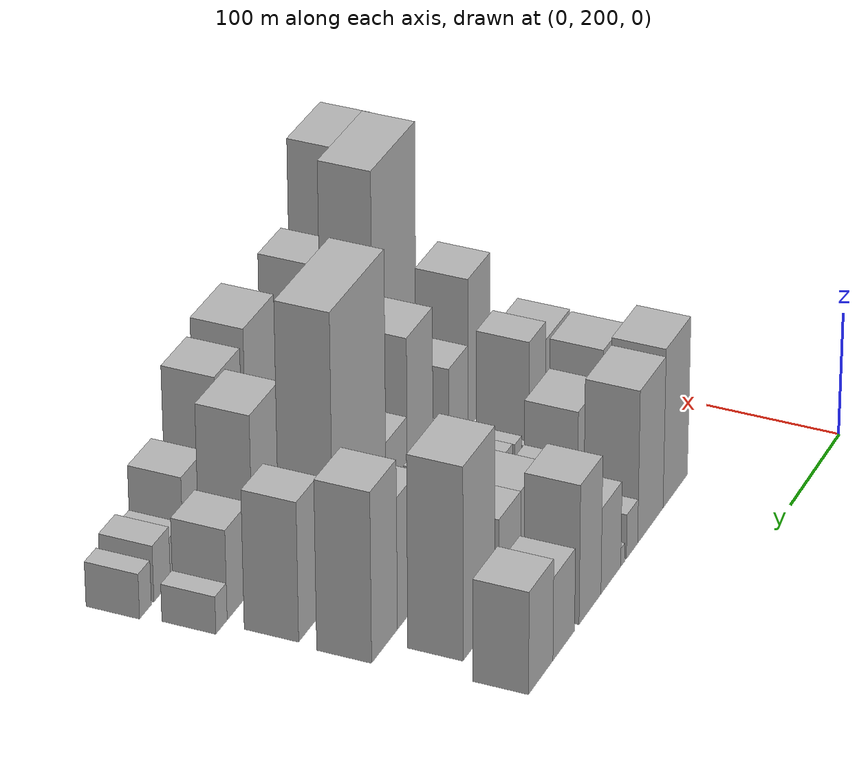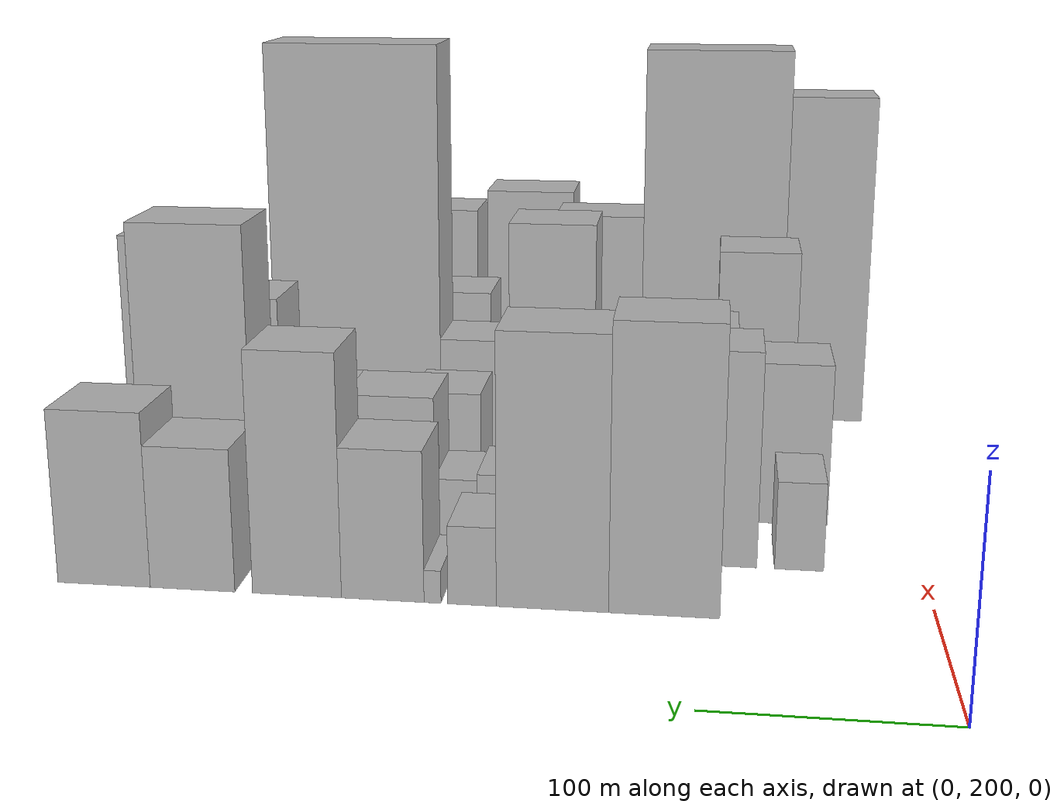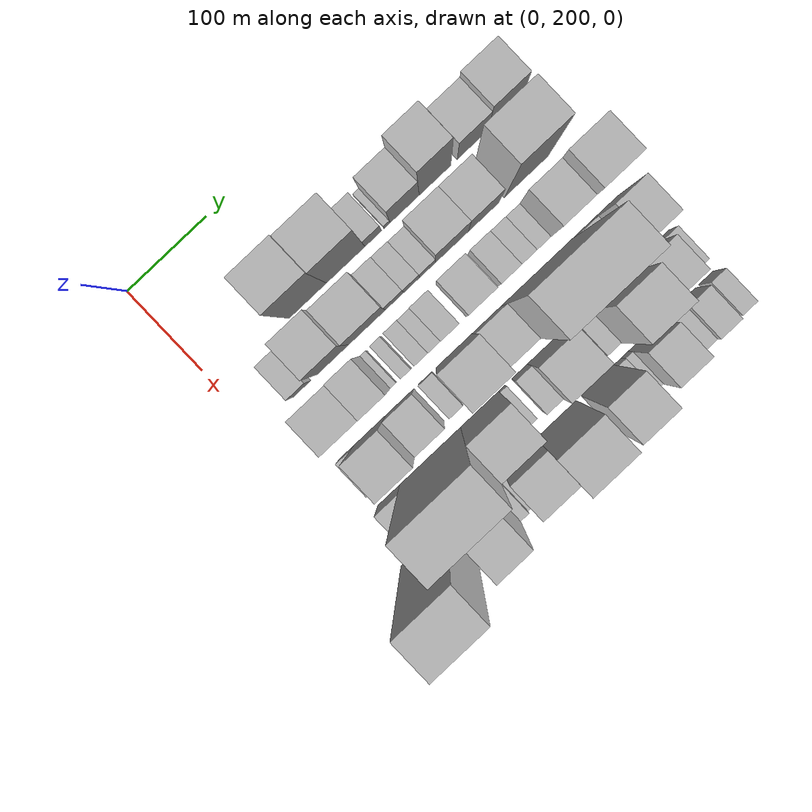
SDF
<sdf version="1.6">
 <world name="default">
  <model name="building_30">
   <static>1</static>
   <pose>100.0000 314.6319 0 0.000000 0.000000 0.000000</pose>
   <link name="link">
    <pose>0 0 64.50 0 0 0</pose>
    <collision name="collision"><geometry><box><size>40.0000 47.1267 129.0000</size></box></geometry></collision>
    <visual name="visual">
     <cast_shadows>0</cast_shadows>
     <geometry><box><size>40.0000 47.1267 129.0000</size></box></geometry>
     <material>
      <script>
       <uri>model://HANNAS_wall/materials/scripts</uri>
       <uri>model://HANNAS_wall/materials/textures</uri>
       <name>vrc/HANNAS_wall</name>
      </script>
     </material>
    </visual>
   </link>
  </model>
  <model name="building_31">
   <static>1</static>
   <pose>100.0000 362.3752 0 0.000000 0.000000 0.000000</pose>
   <link name="link">
    <pose>0 0 61.50 0 0 0</pose>
    <collision name="collision"><geometry><box><size>40.0000 48.3600 123.0000</size></box></geometry></collision>
    <visual name="visual">
     <cast_shadows>0</cast_shadows>
     <geometry><box><size>40.0000 48.3600 123.0000</size></box></geometry>
     <material>
      <script>
       <uri>model://HANNAS_wall/materials/scripts</uri>
       <uri>model://HANNAS_wall/materials/textures</uri>
       <name>vrc/HANNAS_wall</name>
      </script>
     </material>
    </visual>
   </link>
  </model>
  <model name="building_32">
   <static>1</static>
   <pose>100.0000 397.0829 0 0.000000 0.000000 0.000000</pose>
   <link name="link">
    <pose>0 0 18.00 0 0 0</pose>
    <collision name="collision"><geometry><box><size>40.0000 21.0553 36.0000</size></box></geometry></collision>
    <visual name="visual">
     <cast_shadows>0</cast_shadows>
     <geometry><box><size>40.0000 21.0553 36.0000</size></box></geometry>
     <material>
      <script>
       <uri>model://HANNAS_wall/materials/scripts</uri>
       <uri>model://HANNAS_wall/materials/textures</uri>
       <name>vrc/HANNAS_wall</name>
      </script>
     </material>
    </visual>
   </link>
  </model>
  <model name="building_33">
   <static>1</static>
   <pose>100.0000 414.3294 0 0.000000 0.000000 0.000000</pose>
   <link name="link">
    <pose>0 0 7.50 0 0 0</pose>
    <collision name="collision"><geometry><box><size>40.0000 7.4376 15.0000</size></box></geometry></collision>
    <visual name="visual">
     <cast_shadows>0</cast_shadows>
     <geometry><box><size>40.0000 7.4376 15.0000</size></box></geometry>
     <material>
      <script>
       <uri>model://HANNAS_wall/materials/scripts</uri>
       <uri>model://HANNAS_wall/materials/textures</uri>
       <name>vrc/HANNAS_wall</name>
      </script>
     </material>
    </visual>
   </link>
  </model>
  <model name="building_34">
   <static>1</static>
   <pose>100.0000 436.3212 0 0.000000 0.000000 0.000000</pose>
   <link name="link">
    <pose>0 0 34.50 0 0 0</pose>
    <collision name="collision"><geometry><box><size>40.0000 36.5459 69.0000</size></box></geometry></collision>
    <visual name="visual">
     <cast_shadows>0</cast_shadows>
     <geometry><box><size>40.0000 36.5459 69.0000</size></box></geometry>
     <material>
      <script>
       <uri>model://HANNAS_wall/materials/scripts</uri>
       <uri>model://HANNAS_wall/materials/textures</uri>
       <name>vrc/HANNAS_wall</name>
      </script>
     </material>
    </visual>
   </link>
  </model>
  <model name="building_35">
   <static>1</static>
   <pose>100.0000 474.5273 0 0.000000 0.000000 0.000000</pose>
   <link name="link">
    <pose>0 0 55.50 0 0 0</pose>
    <collision name="collision"><geometry><box><size>40.0000 39.8662 111.0000</size></box></geometry></collision>
    <visual name="visual">
     <cast_shadows>0</cast_shadows>
     <geometry><box><size>40.0000 39.8662 111.0000</size></box></geometry>
     <material>
      <script>
       <uri>model://HANNAS_wall/materials/scripts</uri>
       <uri>model://HANNAS_wall/materials/textures</uri>
       <name>vrc/HANNAS_wall</name>
      </script>
     </material>
    </visual>
   </link>
  </model>
  <model name="building_36">
   <static>1</static>
   <pose>100.0000 521.7533 0 0.000000 0.000000 0.000000</pose>
   <link name="link">
    <pose>0 0 33.00 0 0 0</pose>
    <collision name="collision"><geometry><box><size>40.0000 38.5858 66.0000</size></box></geometry></collision>
    <visual name="visual">
     <cast_shadows>0</cast_shadows>
     <geometry><box><size>40.0000 38.5858 66.0000</size></box></geometry>
     <material>
      <script>
       <uri>model://HANNAS_wall/materials/scripts</uri>
       <uri>model://HANNAS_wall/materials/textures</uri>
       <name>vrc/HANNAS_wall</name>
      </script>
     </material>
    </visual>
   </link>
  </model>
  <model name="building_37">
   <static>1</static>
   <pose>100.0000 562.4092 0 0.000000 0.000000 0.000000</pose>
   <link name="link">
    <pose>0 0 40.50 0 0 0</pose>
    <collision name="collision"><geometry><box><size>40.0000 42.7259 81.0000</size></box></geometry></collision>
    <visual name="visual">
     <cast_shadows>0</cast_shadows>
     <geometry><box><size>40.0000 42.7259 81.0000</size></box></geometry>
     <material>
      <script>
       <uri>model://HANNAS_wall/materials/scripts</uri>
       <uri>model://HANNAS_wall/materials/textures</uri>
       <name>vrc/HANNAS_wall</name>
      </script>
     </material>
    </visual>
   </link>
  </model>
  <model name="building_83">
   <static>1</static>
   <pose>155.0000 255.4973 0 0.000000 0.000000 0.000000</pose>
   <link name="link">
    <pose>0 0 21.00 0 0 0</pose>
    <collision name="collision"><geometry><box><size>40.0000 21.9755 42.0000</size></box></geometry></collision>
    <visual name="visual">
     <cast_shadows>0</cast_shadows>
     <geometry><box><size>40.0000 21.9755 42.0000</size></box></geometry>
     <material>
      <script>
       <uri>model://HANNAS_wall/materials/scripts</uri>
       <uri>model://HANNAS_wall/materials/textures</uri>
       <name>vrc/HANNAS_wall</name>
      </script>
     </material>
    </visual>
   </link>
  </model>
  <model name="building_84">
   <static>1</static>
   <pose>155.0000 294.4919 0 0.000000 0.000000 0.000000</pose>
   <link name="link">
    <pose>0 0 51.00 0 0 0</pose>
    <collision name="collision"><geometry><box><size>40.0000 40.0136 102.0000</size></box></geometry></collision>
    <visual name="visual">
     <cast_shadows>0</cast_shadows>
     <geometry><box><size>40.0000 40.0136 102.0000</size></box></geometry>
     <material>
      <script>
       <uri>model://HANNAS_wall/materials/scripts</uri>
       <uri>model://HANNAS_wall/materials/textures</uri>
       <name>vrc/HANNAS_wall</name>
      </script>
     </material>
    </visual>
   </link>
  </model>
  <model name="building_85">
   <static>1</static>
   <pose>155.0000 337.5068 0 0.000000 0.000000 0.000000</pose>
   <link name="link">
    <pose>0 0 39.00 0 0 0</pose>
    <collision name="collision"><geometry><box><size>40.0000 46.0161 78.0000</size></box></geometry></collision>
    <visual name="visual">
     <cast_shadows>0</cast_shadows>
     <geometry><box><size>40.0000 46.0161 78.0000</size></box></geometry>
     <material>
      <script>
       <uri>model://HANNAS_wall/materials/scripts</uri>
       <uri>model://HANNAS_wall/materials/textures</uri>
       <name>vrc/HANNAS_wall</name>
      </script>
     </material>
    </visual>
   </link>
  </model>
  <model name="building_86">
   <static>1</static>
   <pose>155.0000 371.8762 0 0.000000 0.000000 0.000000</pose>
   <link name="link">
    <pose>0 0 21.00 0 0 0</pose>
    <collision name="collision"><geometry><box><size>40.0000 22.7227 42.0000</size></box></geometry></collision>
    <visual name="visual">
     <cast_shadows>0</cast_shadows>
     <geometry><box><size>40.0000 22.7227 42.0000</size></box></geometry>
     <material>
      <script>
       <uri>model://HANNAS_wall/materials/scripts</uri>
       <uri>model://HANNAS_wall/materials/textures</uri>
       <name>vrc/HANNAS_wall</name>
      </script>
     </material>
    </visual>
   </link>
  </model>
  <model name="building_87">
   <static>1</static>
   <pose>155.0000 393.2218 0 0.000000 0.000000 0.000000</pose>
   <link name="link">
    <pose>0 0 19.50 0 0 0</pose>
    <collision name="collision"><geometry><box><size>40.0000 19.9685 39.0000</size></box></geometry></collision>
    <visual name="visual">
     <cast_shadows>0</cast_shadows>
     <geometry><box><size>40.0000 19.9685 39.0000</size></box></geometry>
     <material>
      <script>
       <uri>model://HANNAS_wall/materials/scripts</uri>
       <uri>model://HANNAS_wall/materials/textures</uri>
       <name>vrc/HANNAS_wall</name>
      </script>
     </material>
    </visual>
   </link>
  </model>
  <model name="building_88">
   <static>1</static>
   <pose>155.0000 413.1202 0 0.000000 0.000000 0.000000</pose>
   <link name="link">
    <pose>0 0 18.00 0 0 0</pose>
    <collision name="collision"><geometry><box><size>40.0000 19.8284 36.0000</size></box></geometry></collision>
    <visual name="visual">
     <cast_shadows>0</cast_shadows>
     <geometry><box><size>40.0000 19.8284 36.0000</size></box></geometry>
     <material>
      <script>
       <uri>model://HANNAS_wall/materials/scripts</uri>
       <uri>model://HANNAS_wall/materials/textures</uri>
       <name>vrc/HANNAS_wall</name>
      </script>
     </material>
    </visual>
   </link>
  </model>
  <model name="building_89">
   <static>1</static>
   <pose>155.0000 443.6452 0 0.000000 0.000000 0.000000</pose>
   <link name="link">
    <pose>0 0 37.50 0 0 0</pose>
    <collision name="collision"><geometry><box><size>40.0000 41.2216 75.0000</size></box></geometry></collision>
    <visual name="visual">
     <cast_shadows>0</cast_shadows>
     <geometry><box><size>40.0000 41.2216 75.0000</size></box></geometry>
     <material>
      <script>
       <uri>model://HANNAS_wall/materials/scripts</uri>
       <uri>model://HANNAS_wall/materials/textures</uri>
       <name>vrc/HANNAS_wall</name>
      </script>
     </material>
    </visual>
   </link>
  </model>
  <model name="building_90">
   <static>1</static>
   <pose>155.0000 483.4719 0 0.000000 0.000000 0.000000</pose>
   <link name="link">
    <pose>0 0 37.50 0 0 0</pose>
    <collision name="collision"><geometry><box><size>40.0000 38.4318 75.0000</size></box></geometry></collision>
    <visual name="visual">
     <cast_shadows>0</cast_shadows>
     <geometry><box><size>40.0000 38.4318 75.0000</size></box></geometry>
     <material>
      <script>
       <uri>model://HANNAS_wall/materials/scripts</uri>
       <uri>model://HANNAS_wall/materials/textures</uri>
       <name>vrc/HANNAS_wall</name>
      </script>
     </material>
    </visual>
   </link>
  </model>
  <model name="building_91">
   <static>1</static>
   <pose>155.0000 537.0962 0 0.000000 0.000000 0.000000</pose>
   <link name="link">
    <pose>0 0 76.50 0 0 0</pose>
    <collision name="collision"><geometry><box><size>40.0000 54.8168 153.0000</size></box></geometry></collision>
    <visual name="visual">
     <cast_shadows>0</cast_shadows>
     <geometry><box><size>40.0000 54.8168 153.0000</size></box></geometry>
     <material>
      <script>
       <uri>model://HANNAS_wall/materials/scripts</uri>
       <uri>model://HANNAS_wall/materials/textures</uri>
       <name>vrc/HANNAS_wall</name>
      </script>
     </material>
    </visual>
   </link>
  </model>
  <model name="building_136">
   <static>1</static>
   <pose>210.0000 262.2452 0 0.000000 0.000000 0.000000</pose>
   <link name="link">
    <pose>0 0 40.50 0 0 0</pose>
    <collision name="collision"><geometry><box><size>40.0000 45.6060 81.0000</size></box></geometry></collision>
    <visual name="visual">
     <cast_shadows>0</cast_shadows>
     <geometry><box><size>40.0000 45.6060 81.0000</size></box></geometry>
     <material>
      <script>
       <uri>model://HANNAS_wall/materials/scripts</uri>
       <uri>model://HANNAS_wall/materials/textures</uri>
       <name>vrc/HANNAS_wall</name>
      </script>
     </material>
    </visual>
   </link>
  </model>
  <model name="building_137">
   <static>1</static>
   <pose>210.0000 300.2161 0 0.000000 0.000000 0.000000</pose>
   <link name="link">
    <pose>0 0 48.00 0 0 0</pose>
    <collision name="collision"><geometry><box><size>40.0000 30.3357 96.0000</size></box></geometry></collision>
    <visual name="visual">
     <cast_shadows>0</cast_shadows>
     <geometry><box><size>40.0000 30.3357 96.0000</size></box></geometry>
     <material>
      <script>
       <uri>model://HANNAS_wall/materials/scripts</uri>
       <uri>model://HANNAS_wall/materials/textures</uri>
       <name>vrc/HANNAS_wall</name>
      </script>
     </material>
    </visual>
   </link>
  </model>
  <model name="building_138">
   <static>1</static>
   <pose>210.0000 318.8858 0 0.000000 0.000000 0.000000</pose>
   <link name="link">
    <pose>0 0 7.50 0 0 0</pose>
    <collision name="collision"><geometry><box><size>40.0000 7.0038 15.0000</size></box></geometry></collision>
    <visual name="visual">
     <cast_shadows>0</cast_shadows>
     <geometry><box><size>40.0000 7.0038 15.0000</size></box></geometry>
     <material>
      <script>
       <uri>model://HANNAS_wall/materials/scripts</uri>
       <uri>model://HANNAS_wall/materials/textures</uri>
       <name>vrc/HANNAS_wall</name>
      </script>
     </material>
    </visual>
   </link>
  </model>
  <model name="building_139">
   <static>1</static>
   <pose>210.0000 334.7355 0 0.000000 0.000000 0.000000</pose>
   <link name="link">
    <pose>0 0 13.50 0 0 0</pose>
    <collision name="collision"><geometry><box><size>40.0000 12.6956 27.0000</size></box></geometry></collision>
    <visual name="visual">
     <cast_shadows>0</cast_shadows>
     <geometry><box><size>40.0000 12.6956 27.0000</size></box></geometry>
     <material>
      <script>
       <uri>model://HANNAS_wall/materials/scripts</uri>
       <uri>model://HANNAS_wall/materials/textures</uri>
       <name>vrc/HANNAS_wall</name>
      </script>
     </material>
    </visual>
   </link>
  </model>
  <model name="building_140">
   <static>1</static>
   <pose>210.0000 353.4913 0 0.000000 0.000000 0.000000</pose>
   <link name="link">
    <pose>0 0 15.00 0 0 0</pose>
    <collision name="collision"><geometry><box><size>40.0000 16.8160 30.0000</size></box></geometry></collision>
    <visual name="visual">
     <cast_shadows>0</cast_shadows>
     <geometry><box><size>40.0000 16.8160 30.0000</size></box></geometry>
     <material>
      <script>
       <uri>model://HANNAS_wall/materials/scripts</uri>
       <uri>model://HANNAS_wall/materials/textures</uri>
       <name>vrc/HANNAS_wall</name>
      </script>
     </material>
    </visual>
   </link>
  </model>
  <model name="building_141">
   <static>1</static>
   <pose>210.0000 369.5253 0 0.000000 0.000000 0.000000</pose>
   <link name="link">
    <pose>0 0 15.00 0 0 0</pose>
    <collision name="collision"><geometry><box><size>40.0000 15.2520 30.0000</size></box></geometry></collision>
    <visual name="visual">
     <cast_shadows>0</cast_shadows>
     <geometry><box><size>40.0000 15.2520 30.0000</size></box></geometry>
     <material>
      <script>
       <uri>model://HANNAS_wall/materials/scripts</uri>
       <uri>model://HANNAS_wall/materials/textures</uri>
       <name>vrc/HANNAS_wall</name>
      </script>
     </material>
    </visual>
   </link>
  </model>
  <model name="building_142">
   <static>1</static>
   <pose>210.0000 388.4148 0 0.000000 0.000000 0.000000</pose>
   <link name="link">
    <pose>0 0 21.00 0 0 0</pose>
    <collision name="collision"><geometry><box><size>40.0000 22.5270 42.0000</size></box></geometry></collision>
    <visual name="visual">
     <cast_shadows>0</cast_shadows>
     <geometry><box><size>40.0000 22.5270 42.0000</size></box></geometry>
     <material>
      <script>
       <uri>model://HANNAS_wall/materials/scripts</uri>
       <uri>model://HANNAS_wall/materials/textures</uri>
       <name>vrc/HANNAS_wall</name>
      </script>
     </material>
    </visual>
   </link>
  </model>
  <model name="building_143">
   <static>1</static>
   <pose>210.0000 426.7363 0 0.000000 0.000000 0.000000</pose>
   <link name="link">
    <pose>0 0 30.00 0 0 0</pose>
    <collision name="collision"><geometry><box><size>40.0000 34.1160 60.0000</size></box></geometry></collision>
    <visual name="visual">
     <cast_shadows>0</cast_shadows>
     <geometry><box><size>40.0000 34.1160 60.0000</size></box></geometry>
     <material>
      <script>
       <uri>model://HANNAS_wall/materials/scripts</uri>
       <uri>model://HANNAS_wall/materials/textures</uri>
       <name>vrc/HANNAS_wall</name>
      </script>
     </material>
    </visual>
   </link>
  </model>
  <model name="building_144">
   <static>1</static>
   <pose>210.0000 462.1225 0 0.000000 0.000000 0.000000</pose>
   <link name="link">
    <pose>0 0 21.00 0 0 0</pose>
    <collision name="collision"><geometry><box><size>40.0000 24.6564 42.0000</size></box></geometry></collision>
    <visual name="visual">
     <cast_shadows>0</cast_shadows>
     <geometry><box><size>40.0000 24.6564 42.0000</size></box></geometry>
     <material>
      <script>
       <uri>model://HANNAS_wall/materials/scripts</uri>
       <uri>model://HANNAS_wall/materials/textures</uri>
       <name>vrc/HANNAS_wall</name>
      </script>
     </material>
    </visual>
   </link>
  </model>
  <model name="building_145">
   <static>1</static>
   <pose>210.0000 483.9629 0 0.000000 0.000000 0.000000</pose>
   <link name="link">
    <pose>0 0 18.00 0 0 0</pose>
    <collision name="collision"><geometry><box><size>40.0000 19.0243 36.0000</size></box></geometry></collision>
    <visual name="visual">
     <cast_shadows>0</cast_shadows>
     <geometry><box><size>40.0000 19.0243 36.0000</size></box></geometry>
     <material>
      <script>
       <uri>model://HANNAS_wall/materials/scripts</uri>
       <uri>model://HANNAS_wall/materials/textures</uri>
       <name>vrc/HANNAS_wall</name>
      </script>
     </material>
    </visual>
   </link>
  </model>
  <model name="building_146">
   <static>1</static>
   <pose>210.0000 502.0914 0 0.000000 0.000000 0.000000</pose>
   <link name="link">
    <pose>0 0 16.50 0 0 0</pose>
    <collision name="collision"><geometry><box><size>40.0000 17.2326 33.0000</size></box></geometry></collision>
    <visual name="visual">
     <cast_shadows>0</cast_shadows>
     <geometry><box><size>40.0000 17.2326 33.0000</size></box></geometry>
     <material>
      <script>
       <uri>model://HANNAS_wall/materials/scripts</uri>
       <uri>model://HANNAS_wall/materials/textures</uri>
       <name>vrc/HANNAS_wall</name>
      </script>
     </material>
    </visual>
   </link>
  </model>
  <model name="building_147">
   <static>1</static>
   <pose>210.0000 528.9650 0 0.000000 0.000000 0.000000</pose>
   <link name="link">
    <pose>0 0 52.50 0 0 0</pose>
    <collision name="collision"><geometry><box><size>40.0000 36.5147 105.0000</size></box></geometry></collision>
    <visual name="visual">
     <cast_shadows>0</cast_shadows>
     <geometry><box><size>40.0000 36.5147 105.0000</size></box></geometry>
     <material>
      <script>
       <uri>model://HANNAS_wall/materials/scripts</uri>
       <uri>model://HANNAS_wall/materials/textures</uri>
       <name>vrc/HANNAS_wall</name>
      </script>
     </material>
    </visual>
   </link>
  </model>
  <model name="building_148">
   <static>1</static>
   <pose>210.0000 568.8147 0 0.000000 0.000000 0.000000</pose>
   <link name="link">
    <pose>0 0 67.50 0 0 0</pose>
    <collision name="collision"><geometry><box><size>40.0000 43.1846 135.0000</size></box></geometry></collision>
    <visual name="visual">
     <cast_shadows>0</cast_shadows>
     <geometry><box><size>40.0000 43.1846 135.0000</size></box></geometry>
     <material>
      <script>
       <uri>model://HANNAS_wall/materials/scripts</uri>
       <uri>model://HANNAS_wall/materials/textures</uri>
       <name>vrc/HANNAS_wall</name>
      </script>
     </material>
    </visual>
   </link>
  </model>
  <model name="building_191">
   <static>1</static>
   <pose>265.0000 245.1138 0 0.000000 0.000000 0.000000</pose>
   <link name="link">
    <pose>0 0 16.50 0 0 0</pose>
    <collision name="collision"><geometry><box><size>40.0000 18.4660 33.0000</size></box></geometry></collision>
    <visual name="visual">
     <cast_shadows>0</cast_shadows>
     <geometry><box><size>40.0000 18.4660 33.0000</size></box></geometry>
     <material>
      <script>
       <uri>model://HANNAS_wall/materials/scripts</uri>
       <uri>model://HANNAS_wall/materials/textures</uri>
       <name>vrc/HANNAS_wall</name>
      </script>
     </material>
    </visual>
   </link>
  </model>
  <model name="building_192">
   <static>1</static>
   <pose>265.0000 274.6397 0 0.000000 0.000000 0.000000</pose>
   <link name="link">
    <pose>0 0 61.50 0 0 0</pose>
    <collision name="collision"><geometry><box><size>40.0000 40.5857 123.0000</size></box></geometry></collision>
    <visual name="visual">
     <cast_shadows>0</cast_shadows>
     <geometry><box><size>40.0000 40.5857 123.0000</size></box></geometry>
     <material>
      <script>
       <uri>model://HANNAS_wall/materials/scripts</uri>
       <uri>model://HANNAS_wall/materials/textures</uri>
       <name>vrc/HANNAS_wall</name>
      </script>
     </material>
    </visual>
   </link>
  </model>
  <model name="building_193">
   <static>1</static>
   <pose>265.0000 312.2725 0 0.000000 0.000000 0.000000</pose>
   <link name="link">
    <pose>0 0 34.50 0 0 0</pose>
    <collision name="collision"><geometry><box><size>40.0000 34.6798 69.0000</size></box></geometry></collision>
    <visual name="visual">
     <cast_shadows>0</cast_shadows>
     <geometry><box><size>40.0000 34.6798 69.0000</size></box></geometry>
     <material>
      <script>
       <uri>model://HANNAS_wall/materials/scripts</uri>
       <uri>model://HANNAS_wall/materials/textures</uri>
       <name>vrc/HANNAS_wall</name>
      </script>
     </material>
    </visual>
   </link>
  </model>
  <model name="building_194">
   <static>1</static>
   <pose>265.0000 344.1793 0 0.000000 0.000000 0.000000</pose>
   <link name="link">
    <pose>0 0 15.00 0 0 0</pose>
    <collision name="collision"><geometry><box><size>40.0000 17.1338 30.0000</size></box></geometry></collision>
    <visual name="visual">
     <cast_shadows>0</cast_shadows>
     <geometry><box><size>40.0000 17.1338 30.0000</size></box></geometry>
     <material>
      <script>
       <uri>model://HANNAS_wall/materials/scripts</uri>
       <uri>model://HANNAS_wall/materials/textures</uri>
       <name>vrc/HANNAS_wall</name>
      </script>
     </material>
    </visual>
   </link>
  </model>
  <model name="building_195">
   <static>1</static>
   <pose>265.0000 380.2860 0 0.000000 0.000000 0.000000</pose>
   <link name="link">
    <pose>0 0 67.50 0 0 0</pose>
    <collision name="collision"><geometry><box><size>40.0000 45.0798 135.0000</size></box></geometry></collision>
    <visual name="visual">
     <cast_shadows>0</cast_shadows>
     <geometry><box><size>40.0000 45.0798 135.0000</size></box></geometry>
     <material>
      <script>
       <uri>model://HANNAS_wall/materials/scripts</uri>
       <uri>model://HANNAS_wall/materials/textures</uri>
       <name>vrc/HANNAS_wall</name>
      </script>
     </material>
    </visual>
   </link>
  </model>
  <model name="building_196">
   <static>1</static>
   <pose>265.0000 421.1002 0 0.000000 0.000000 0.000000</pose>
   <link name="link">
    <pose>0 0 36.00 0 0 0</pose>
    <collision name="collision"><geometry><box><size>40.0000 36.5485 72.0000</size></box></geometry></collision>
    <visual name="visual">
     <cast_shadows>0</cast_shadows>
     <geometry><box><size>40.0000 36.5485 72.0000</size></box></geometry>
     <material>
      <script>
       <uri>model://HANNAS_wall/materials/scripts</uri>
       <uri>model://HANNAS_wall/materials/textures</uri>
       <name>vrc/HANNAS_wall</name>
      </script>
     </material>
    </visual>
   </link>
  </model>
  <model name="building_197">
   <static>1</static>
   <pose>265.0000 484.1575 0 0.000000 0.000000 0.000000</pose>
   <link name="link">
    <pose>0 0 112.50 0 0 0</pose>
    <collision name="collision"><geometry><box><size>40.0000 89.5661 225.0000</size></box></geometry></collision>
    <visual name="visual">
     <cast_shadows>0</cast_shadows>
     <geometry><box><size>40.0000 89.5661 225.0000</size></box></geometry>
     <material>
      <script>
       <uri>model://HANNAS_wall/materials/scripts</uri>
       <uri>model://HANNAS_wall/materials/textures</uri>
       <name>vrc/HANNAS_wall</name>
      </script>
     </material>
    </visual>
   </link>
  </model>
  <model name="building_198">
   <static>1</static>
   <pose>265.0000 540.0744 0 0.000000 0.000000 0.000000</pose>
   <link name="link">
    <pose>0 0 21.00 0 0 0</pose>
    <collision name="collision"><geometry><box><size>40.0000 22.2676 42.0000</size></box></geometry></collision>
    <visual name="visual">
     <cast_shadows>0</cast_shadows>
     <geometry><box><size>40.0000 22.2676 42.0000</size></box></geometry>
     <material>
      <script>
       <uri>model://HANNAS_wall/materials/scripts</uri>
       <uri>model://HANNAS_wall/materials/textures</uri>
       <name>vrc/HANNAS_wall</name>
      </script>
     </material>
    </visual>
   </link>
  </model>
  <model name="building_199">
   <static>1</static>
   <pose>265.0000 568.7984 0 0.000000 0.000000 0.000000</pose>
   <link name="link">
    <pose>0 0 55.50 0 0 0</pose>
    <collision name="collision"><geometry><box><size>40.0000 35.1804 111.0000</size></box></geometry></collision>
    <visual name="visual">
     <cast_shadows>0</cast_shadows>
     <geometry><box><size>40.0000 35.1804 111.0000</size></box></geometry>
     <material>
      <script>
       <uri>model://HANNAS_wall/materials/scripts</uri>
       <uri>model://HANNAS_wall/materials/textures</uri>
       <name>vrc/HANNAS_wall</name>
      </script>
     </material>
    </visual>
   </link>
  </model>
  <model name="building_245">
   <static>1</static>
   <pose>320.0000 245.7446 0 0.000000 0.000000 0.000000</pose>
   <link name="link">
    <pose>0 0 24.00 0 0 0</pose>
    <collision name="collision"><geometry><box><size>40.0000 27.4651 48.0000</size></box></geometry></collision>
    <visual name="visual">
     <cast_shadows>0</cast_shadows>
     <geometry><box><size>40.0000 27.4651 48.0000</size></box></geometry>
     <material>
      <script>
       <uri>model://HANNAS_wall/materials/scripts</uri>
       <uri>model://HANNAS_wall/materials/textures</uri>
       <name>vrc/HANNAS_wall</name>
      </script>
     </material>
    </visual>
   </link>
  </model>
  <model name="building_246">
   <static>1</static>
   <pose>320.0000 297.9126 0 0.000000 0.000000 0.000000</pose>
   <link name="link">
    <pose>0 0 109.50 0 0 0</pose>
    <collision name="collision"><geometry><box><size>40.0000 76.8711 219.0000</size></box></geometry></collision>
    <visual name="visual">
     <cast_shadows>0</cast_shadows>
     <geometry><box><size>40.0000 76.8711 219.0000</size></box></geometry>
     <material>
      <script>
       <uri>model://HANNAS_wall/materials/scripts</uri>
       <uri>model://HANNAS_wall/materials/textures</uri>
       <name>vrc/HANNAS_wall</name>
      </script>
     </material>
    </visual>
   </link>
  </model>
  <model name="building_247">
   <static>1</static>
   <pose>320.0000 360.2757 0 0.000000 0.000000 0.000000</pose>
   <link name="link">
    <pose>0 0 64.50 0 0 0</pose>
    <collision name="collision"><geometry><box><size>40.0000 47.8551 129.0000</size></box></geometry></collision>
    <visual name="visual">
     <cast_shadows>0</cast_shadows>
     <geometry><box><size>40.0000 47.8551 129.0000</size></box></geometry>
     <material>
      <script>
       <uri>model://HANNAS_wall/materials/scripts</uri>
       <uri>model://HANNAS_wall/materials/textures</uri>
       <name>vrc/HANNAS_wall</name>
      </script>
     </material>
    </visual>
   </link>
  </model>
  <model name="building_248">
   <static>1</static>
   <pose>320.0000 388.4399 0 0.000000 0.000000 0.000000</pose>
   <link name="link">
    <pose>0 0 9.00 0 0 0</pose>
    <collision name="collision"><geometry><box><size>40.0000 8.4733 18.0000</size></box></geometry></collision>
    <visual name="visual">
     <cast_shadows>0</cast_shadows>
     <geometry><box><size>40.0000 8.4733 18.0000</size></box></geometry>
     <material>
      <script>
       <uri>model://HANNAS_wall/materials/scripts</uri>
       <uri>model://HANNAS_wall/materials/textures</uri>
       <name>vrc/HANNAS_wall</name>
      </script>
     </material>
    </visual>
   </link>
  </model>
  <model name="building_249">
   <static>1</static>
   <pose>320.0000 410.5685 0 0.000000 0.000000 0.000000</pose>
   <link name="link">
    <pose>0 0 19.50 0 0 0</pose>
    <collision name="collision"><geometry><box><size>40.0000 19.7838 39.0000</size></box></geometry></collision>
    <visual name="visual">
     <cast_shadows>0</cast_shadows>
     <geometry><box><size>40.0000 19.7838 39.0000</size></box></geometry>
     <material>
      <script>
       <uri>model://HANNAS_wall/materials/scripts</uri>
       <uri>model://HANNAS_wall/materials/textures</uri>
       <name>vrc/HANNAS_wall</name>
      </script>
     </material>
    </visual>
   </link>
  </model>
  <model name="building_250">
   <static>1</static>
   <pose>320.0000 444.0755 0 0.000000 0.000000 0.000000</pose>
   <link name="link">
    <pose>0 0 42.00 0 0 0</pose>
    <collision name="collision"><geometry><box><size>40.0000 47.2302 84.0000</size></box></geometry></collision>
    <visual name="visual">
     <cast_shadows>0</cast_shadows>
     <geometry><box><size>40.0000 47.2302 84.0000</size></box></geometry>
     <material>
      <script>
       <uri>model://HANNAS_wall/materials/scripts</uri>
       <uri>model://HANNAS_wall/materials/textures</uri>
       <name>vrc/HANNAS_wall</name>
      </script>
     </material>
    </visual>
   </link>
  </model>
  <model name="building_251">
   <static>1</static>
   <pose>320.0000 471.2905 0 0.000000 0.000000 0.000000</pose>
   <link name="link">
    <pose>0 0 7.50 0 0 0</pose>
    <collision name="collision"><geometry><box><size>40.0000 7.1999 15.0000</size></box></geometry></collision>
    <visual name="visual">
     <cast_shadows>0</cast_shadows>
     <geometry><box><size>40.0000 7.1999 15.0000</size></box></geometry>
     <material>
      <script>
       <uri>model://HANNAS_wall/materials/scripts</uri>
       <uri>model://HANNAS_wall/materials/textures</uri>
       <name>vrc/HANNAS_wall</name>
      </script>
     </material>
    </visual>
   </link>
  </model>
  <model name="building_252">
   <static>1</static>
   <pose>320.0000 483.2172 0 0.000000 0.000000 0.000000</pose>
   <link name="link">
    <pose>0 0 16.50 0 0 0</pose>
    <collision name="collision"><geometry><box><size>40.0000 16.6533 33.0000</size></box></geometry></collision>
    <visual name="visual">
     <cast_shadows>0</cast_shadows>
     <geometry><box><size>40.0000 16.6533 33.0000</size></box></geometry>
     <material>
      <script>
       <uri>model://HANNAS_wall/materials/scripts</uri>
       <uri>model://HANNAS_wall/materials/textures</uri>
       <name>vrc/HANNAS_wall</name>
      </script>
     </material>
    </visual>
   </link>
  </model>
  <model name="building_253">
   <static>1</static>
   <pose>320.0000 515.4440 0 0.000000 0.000000 0.000000</pose>
   <link name="link">
    <pose>0 0 69.00 0 0 0</pose>
    <collision name="collision"><geometry><box><size>40.0000 47.8004 138.0000</size></box></geometry></collision>
    <visual name="visual">
     <cast_shadows>0</cast_shadows>
     <geometry><box><size>40.0000 47.8004 138.0000</size></box></geometry>
     <material>
      <script>
       <uri>model://HANNAS_wall/materials/scripts</uri>
       <uri>model://HANNAS_wall/materials/textures</uri>
       <name>vrc/HANNAS_wall</name>
      </script>
     </material>
    </visual>
   </link>
  </model>
  <model name="building_254">
   <static>1</static>
   <pose>320.0000 562.3246 0 0.000000 0.000000 0.000000</pose>
   <link name="link">
    <pose>0 0 36.00 0 0 0</pose>
    <collision name="collision"><geometry><box><size>40.0000 37.9607 72.0000</size></box></geometry></collision>
    <visual name="visual">
     <cast_shadows>0</cast_shadows>
     <geometry><box><size>40.0000 37.9607 72.0000</size></box></geometry>
     <material>
      <script>
       <uri>model://HANNAS_wall/materials/scripts</uri>
       <uri>model://HANNAS_wall/materials/textures</uri>
       <name>vrc/HANNAS_wall</name>
      </script>
     </material>
    </visual>
   </link>
  </model>
  <model name="building_255">
   <static>1</static>
   <pose>320.0000 590.2886 0 0.000000 0.000000 0.000000</pose>
   <link name="link">
    <pose>0 0 15.00 0 0 0</pose>
    <collision name="collision"><geometry><box><size>40.0000 17.9673 30.0000</size></box></geometry></collision>
    <visual name="visual">
     <cast_shadows>0</cast_shadows>
     <geometry><box><size>40.0000 17.9673 30.0000</size></box></geometry>
     <material>
      <script>
       <uri>model://HANNAS_wall/materials/scripts</uri>
       <uri>model://HANNAS_wall/materials/textures</uri>
       <name>vrc/HANNAS_wall</name>
      </script>
     </material>
    </visual>
   </link>
  </model>
  <model name="building_295">
   <static>1</static>
   <pose>375.0000 238.1922 0 0.000000 0.000000 0.000000</pose>
   <link name="link">
    <pose>0 0 94.50 0 0 0</pose>
    <collision name="collision"><geometry><box><size>40.0000 57.9309 189.0000</size></box></geometry></collision>
    <visual name="visual">
     <cast_shadows>0</cast_shadows>
     <geometry><box><size>40.0000 57.9309 189.0000</size></box></geometry>
     <material>
      <script>
       <uri>model://HANNAS_wall/materials/scripts</uri>
       <uri>model://HANNAS_wall/materials/textures</uri>
       <name>vrc/HANNAS_wall</name>
      </script>
     </material>
    </visual>
   </link>
  </model>
  <model name="building_296">
   <static>1</static>
   <pose>375.0000 273.4691 0 0.000000 0.000000 0.000000</pose>
   <link name="link">
    <pose>0 0 13.50 0 0 0</pose>
    <collision name="collision"><geometry><box><size>40.0000 12.6228 27.0000</size></box></geometry></collision>
    <visual name="visual">
     <cast_shadows>0</cast_shadows>
     <geometry><box><size>40.0000 12.6228 27.0000</size></box></geometry>
     <material>
      <script>
       <uri>model://HANNAS_wall/materials/scripts</uri>
       <uri>model://HANNAS_wall/materials/textures</uri>
       <name>vrc/HANNAS_wall</name>
      </script>
     </material>
    </visual>
   </link>
  </model>
  <model name="building_297">
   <static>1</static>
   <pose>375.0000 299.4305 0 0.000000 0.000000 0.000000</pose>
   <link name="link">
    <pose>0 0 61.50 0 0 0</pose>
    <collision name="collision"><geometry><box><size>40.0000 39.3001 123.0000</size></box></geometry></collision>
    <visual name="visual">
     <cast_shadows>0</cast_shadows>
     <geometry><box><size>40.0000 39.3001 123.0000</size></box></geometry>
     <material>
      <script>
       <uri>model://HANNAS_wall/materials/scripts</uri>
       <uri>model://HANNAS_wall/materials/textures</uri>
       <name>vrc/HANNAS_wall</name>
      </script>
     </material>
    </visual>
   </link>
  </model>
  <model name="building_298">
   <static>1</static>
   <pose>375.0000 324.2861 0 0.000000 0.000000 0.000000</pose>
   <link name="link">
    <pose>0 0 12.00 0 0 0</pose>
    <collision name="collision"><geometry><box><size>40.0000 10.4110 24.0000</size></box></geometry></collision>
    <visual name="visual">
     <cast_shadows>0</cast_shadows>
     <geometry><box><size>40.0000 10.4110 24.0000</size></box></geometry>
     <material>
      <script>
       <uri>model://HANNAS_wall/materials/scripts</uri>
       <uri>model://HANNAS_wall/materials/textures</uri>
       <name>vrc/HANNAS_wall</name>
      </script>
     </material>
    </visual>
   </link>
  </model>
  <model name="building_299">
   <static>1</static>
   <pose>375.0000 333.1618 0 0.000000 0.000000 0.000000</pose>
   <link name="link">
    <pose>0 0 7.50 0 0 0</pose>
    <collision name="collision"><geometry><box><size>40.0000 7.3405 15.0000</size></box></geometry></collision>
    <visual name="visual">
     <cast_shadows>0</cast_shadows>
     <geometry><box><size>40.0000 7.3405 15.0000</size></box></geometry>
     <material>
      <script>
       <uri>model://HANNAS_wall/materials/scripts</uri>
       <uri>model://HANNAS_wall/materials/textures</uri>
       <name>vrc/HANNAS_wall</name>
      </script>
     </material>
    </visual>
   </link>
  </model>
  <model name="building_300">
   <static>1</static>
   <pose>375.0000 358.2591 0 0.000000 0.000000 0.000000</pose>
   <link name="link">
    <pose>0 0 40.50 0 0 0</pose>
    <collision name="collision"><geometry><box><size>40.0000 42.8543 81.0000</size></box></geometry></collision>
    <visual name="visual">
     <cast_shadows>0</cast_shadows>
     <geometry><box><size>40.0000 42.8543 81.0000</size></box></geometry>
     <material>
      <script>
       <uri>model://HANNAS_wall/materials/scripts</uri>
       <uri>model://HANNAS_wall/materials/textures</uri>
       <name>vrc/HANNAS_wall</name>
      </script>
     </material>
    </visual>
   </link>
  </model>
  <model name="building_301">
   <static>1</static>
   <pose>375.0000 404.9564 0 0.000000 0.000000 0.000000</pose>
   <link name="link">
    <pose>0 0 66.00 0 0 0</pose>
    <collision name="collision"><geometry><box><size>40.0000 50.5403 132.0000</size></box></geometry></collision>
    <visual name="visual">
     <cast_shadows>0</cast_shadows>
     <geometry><box><size>40.0000 50.5403 132.0000</size></box></geometry>
     <material>
      <script>
       <uri>model://HANNAS_wall/materials/scripts</uri>
       <uri>model://HANNAS_wall/materials/textures</uri>
       <name>vrc/HANNAS_wall</name>
      </script>
     </material>
    </visual>
   </link>
  </model>
  <model name="building_302">
   <static>1</static>
   <pose>375.0000 456.9096 0 0.000000 0.000000 0.000000</pose>
   <link name="link">
    <pose>0 0 60.00 0 0 0</pose>
    <collision name="collision"><geometry><box><size>40.0000 41.3659 120.0000</size></box></geometry></collision>
    <visual name="visual">
     <cast_shadows>0</cast_shadows>
     <geometry><box><size>40.0000 41.3659 120.0000</size></box></geometry>
     <material>
      <script>
       <uri>model://HANNAS_wall/materials/scripts</uri>
       <uri>model://HANNAS_wall/materials/textures</uri>
       <name>vrc/HANNAS_wall</name>
      </script>
     </material>
    </visual>
   </link>
  </model>
  <model name="building_303">
   <static>1</static>
   <pose>375.0000 482.2839 0 0.000000 0.000000 0.000000</pose>
   <link name="link">
    <pose>0 0 10.50 0 0 0</pose>
    <collision name="collision"><geometry><box><size>40.0000 9.3828 21.0000</size></box></geometry></collision>
    <visual name="visual">
     <cast_shadows>0</cast_shadows>
     <geometry><box><size>40.0000 9.3828 21.0000</size></box></geometry>
     <material>
      <script>
       <uri>model://HANNAS_wall/materials/scripts</uri>
       <uri>model://HANNAS_wall/materials/textures</uri>
       <name>vrc/HANNAS_wall</name>
      </script>
     </material>
    </visual>
   </link>
  </model>
  <model name="building_304">
   <static>1</static>
   <pose>375.0000 491.4035 0 0.000000 0.000000 0.000000</pose>
   <link name="link">
    <pose>0 0 9.00 0 0 0</pose>
    <collision name="collision"><geometry><box><size>40.0000 8.8563 18.0000</size></box></geometry></collision>
    <visual name="visual">
     <cast_shadows>0</cast_shadows>
     <geometry><box><size>40.0000 8.8563 18.0000</size></box></geometry>
     <material>
      <script>
       <uri>model://HANNAS_wall/materials/scripts</uri>
       <uri>model://HANNAS_wall/materials/textures</uri>
       <name>vrc/HANNAS_wall</name>
      </script>
     </material>
    </visual>
   </link>
  </model>
  <model name="building_305">
   <static>1</static>
   <pose>375.0000 514.6082 0 0.000000 0.000000 0.000000</pose>
   <link name="link">
    <pose>0 0 36.00 0 0 0</pose>
    <collision name="collision"><geometry><box><size>40.0000 37.5531 72.0000</size></box></geometry></collision>
    <visual name="visual">
     <cast_shadows>0</cast_shadows>
     <geometry><box><size>40.0000 37.5531 72.0000</size></box></geometry>
     <material>
      <script>
       <uri>model://HANNAS_wall/materials/scripts</uri>
       <uri>model://HANNAS_wall/materials/textures</uri>
       <name>vrc/HANNAS_wall</name>
      </script>
     </material>
    </visual>
   </link>
  </model>
  <model name="building_306">
   <static>1</static>
   <pose>375.0000 543.8309 0 0.000000 0.000000 0.000000</pose>
   <link name="link">
    <pose>0 0 18.00 0 0 0</pose>
    <collision name="collision"><geometry><box><size>40.0000 20.8921 36.0000</size></box></geometry></collision>
    <visual name="visual">
     <cast_shadows>0</cast_shadows>
     <geometry><box><size>40.0000 20.8921 36.0000</size></box></geometry>
     <material>
      <script>
       <uri>model://HANNAS_wall/materials/scripts</uri>
       <uri>model://HANNAS_wall/materials/textures</uri>
       <name>vrc/HANNAS_wall</name>
      </script>
     </material>
    </visual>
   </link>
  </model>
  <model name="building_307">
   <static>1</static>
   <pose>375.0000 567.2846 0 0.000000 0.000000 0.000000</pose>
   <link name="link">
    <pose>0 0 22.50 0 0 0</pose>
    <collision name="collision"><geometry><box><size>40.0000 26.0153 45.0000</size></box></geometry></collision>
    <visual name="visual">
     <cast_shadows>0</cast_shadows>
     <geometry><box><size>40.0000 26.0153 45.0000</size></box></geometry>
     <material>
      <script>
       <uri>model://HANNAS_wall/materials/scripts</uri>
       <uri>model://HANNAS_wall/materials/textures</uri>
       <name>vrc/HANNAS_wall</name>
      </script>
     </material>
    </visual>
   </link>
  </model>
  <model name="building_308">
   <static>1</static>
   <pose>375.0000 593.4751 0 0.000000 0.000000 0.000000</pose>
   <link name="link">
    <pose>0 0 18.00 0 0 0</pose>
    <collision name="collision"><geometry><box><size>40.0000 18.3657 36.0000</size></box></geometry></collision>
    <visual name="visual">
     <cast_shadows>0</cast_shadows>
     <geometry><box><size>40.0000 18.3657 36.0000</size></box></geometry>
     <material>
      <script>
       <uri>model://HANNAS_wall/materials/scripts</uri>
       <uri>model://HANNAS_wall/materials/textures</uri>
       <name>vrc/HANNAS_wall</name>
      </script>
     </material>
    </visual>
   </link>
  </model>
 </world>
</sdf>
